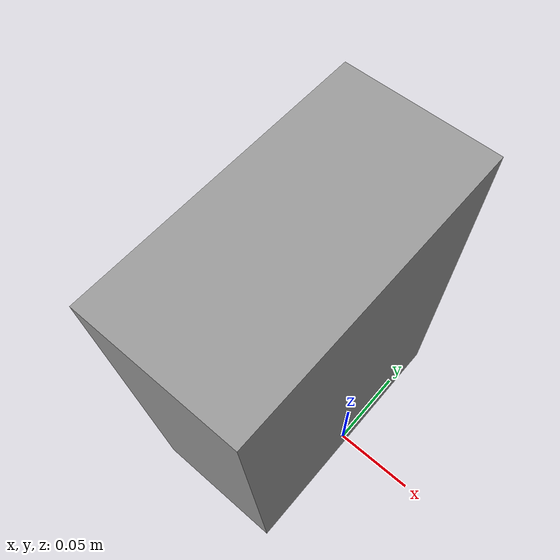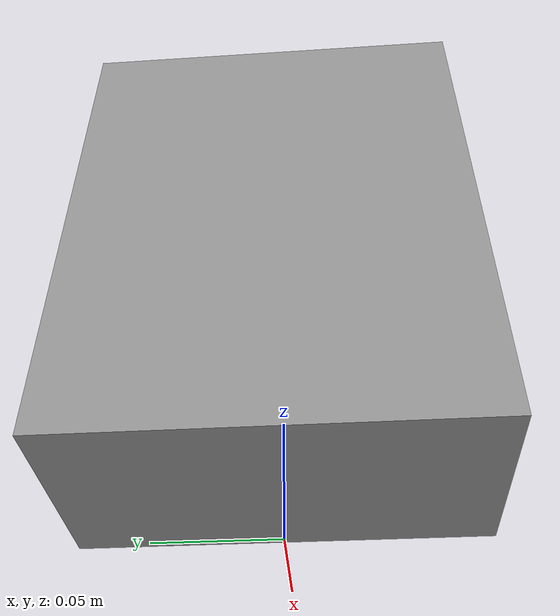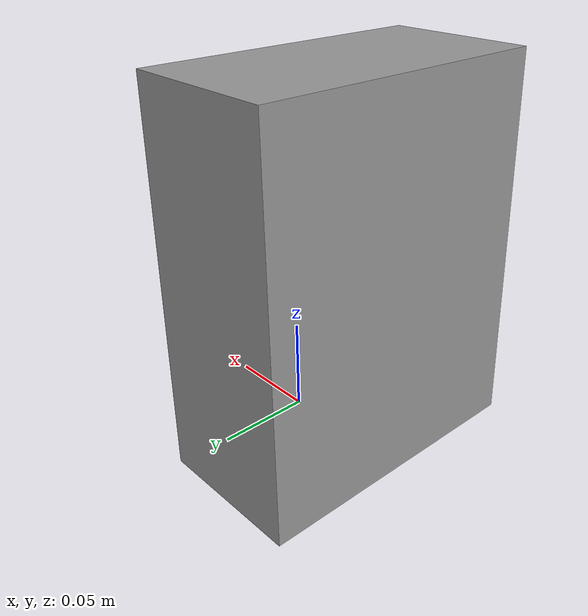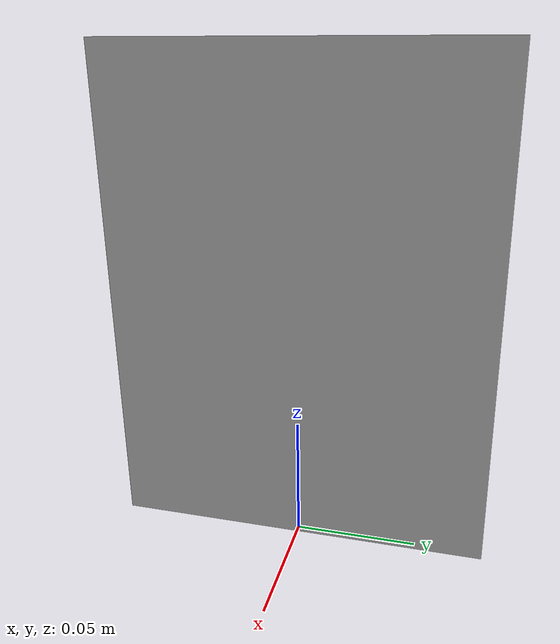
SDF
<?xml version='1.0'?>
<sdf version='1.5'>
  <model name='tc6_box'>
    <static>true</static>
    <link name='box'>
      <pose>-0.037286 0 0.1 0 -0 0</pose>
      <visual name='visual'>
        <geometry>
          <box>
            <size>0.08 0.155 0.2</size>
          </box>
        </geometry>
        <material>
          <lighting>1</lighting>
          <script>
            <uri>file://media/materials/scripts/gazebo.material</uri>
            <name>Gazebo/Grey</name>
          </script>
          <shader type='vertex'>
            <normal_map>__default__</normal_map>
          </shader>
          <ambient>0.194 0.187 0.169 1</ambient>
          <diffuse>0.7 0.7 0.7 1</diffuse>
          <specular>0.01 0.01 0.01 1</specular>
          <emissive>0 0 0 1</emissive>
        </material>
        <transparency>0</transparency>
        <cast_shadows>1</cast_shadows>
      </visual>
      <collision name='collision'>
        <geometry>
          <box>
            <size>0.08 0.155 0.2</size>
          </box>
        </geometry>
      </collision>
    </link>

    <static>0</static>
    <allow_auto_disable>1</allow_auto_disable>

  </model>
</sdf>
